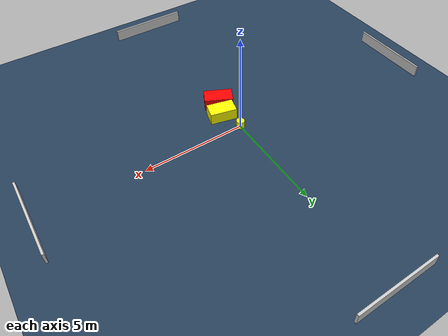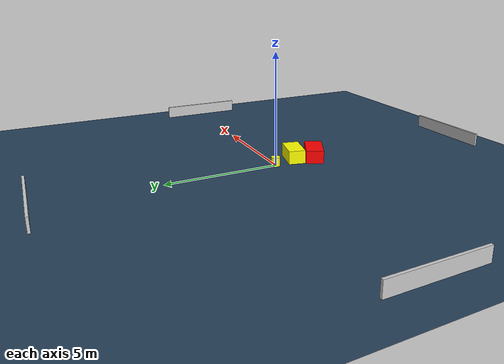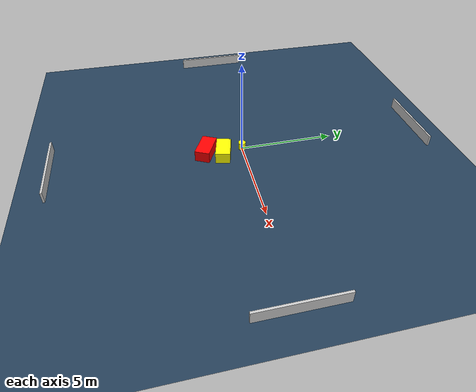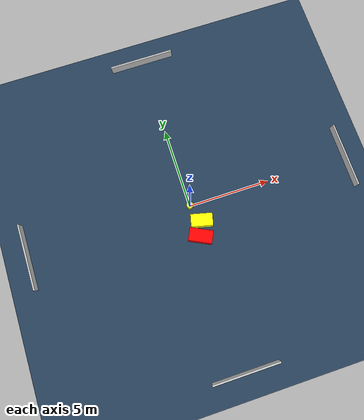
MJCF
<?xml version="1.0" ?>
<mujoco model="generated_environment">
  <option timestep="0.01" integrator="RK4" cone="elliptic"/>
  <default>
    <geom density="1"/>
  </default>
  <asset>
    <texture builtin="gradient" height="3072" name="skybox" rgb1="0.3 0.5 0.7" rgb2="0 0 0" type="skybox" width="512"/>
    <texture builtin="checker" height="300" name="groundplane" rgb1="0.2 0.3 0.4" rgb2="0.1 0.2 0.3" type="2d" width="300"/>
    <material name="groundplane" reflectance="0.2" texrepeat="5 5" texture="groundplane"/>
  </asset>
  <worldbody>
    <light dir="0 0 -1" directional="true" pos="0 0 1.5"/>
    <geom condim="3" friction="0.5 0.005 0.001" material="groundplane" name="floor" pos="0 0 0" size="0 0 0.05" type="plane"/>
    <body name="walls">
      <geom name="wall_1" condim="4" pos="-10.0 0.0 0.3" rgba="0.800000011920929 0.800000011920929 0.800000011920929 1.0" size="0.05 2.0 0.3" type="box"/>
      <geom name="wall_2" condim="4" pos="10.0 0.0 0.3" rgba="0.800000011920929 0.800000011920929 0.800000011920929 1.0" size="0.05 2.0 0.3" type="box"/>
      <geom name="wall_3" condim="4" pos="0.0 -10.0 0.3" rgba="0.800000011920929 0.800000011920929 0.800000011920929 1.0" size="2.0 0.05 0.3" type="box"/>
      <geom name="wall_4" condim="4" pos="0.0 10.0 0.3" rgba="0.800000011920929 0.800000011920929 0.800000011920929 1.0" size="2.0 0.05 0.3" type="box"/>
    </body>
    <body name="robot">
      <joint name="joint_x" type="slide" pos="0 0 0" axis="1 0 0"/>
      <joint name="joint_y" type="slide" pos="0 0 0" axis="0 1 0"/>
      <geom name="robot" type="cylinder" pos="0.0 0.0 0.2" size="0.2 0.2 0.0" mass="5.0" friction="1.0 0.005 0.0001" condim="4" rgba="1.0 1.0 0.0 1.0"/>
    </body>
    <body name="obstacle_1_movable">
      <geom name="obstacle_1_movable" condim="4" pos="0.3703496354692592 -1.100549151025955 0.3" euler="0 0 346.3110335283347" friction="0.0 0.005 0.001" rgba="1.0 1.0 0.0 1.0" size="0.6545578230958831 0.38068188931261393 0.3" type="box" mass="0.1"/>
      <joint type="free"/>
    </body>
    <body name="obstacle_2_static">
      <geom name="obstacle_2_static" condim="4" pos="0.026895727899396947 -1.9689570888487022 0.3" euler="0 0 63.6354629684775" friction="0.0 0.005 0.001" rgba="1.0 0.0 0.0 1.0" size="0.3906973956351095 0.7090476613902463 0.3" type="box"/>
    </body>
  </worldbody>
  <actuator>
    <motor name="actuator_x" joint="joint_x" gear="1" ctrlrange="-1 1"/>
    <motor name="actuator_y" joint="joint_y" gear="1" ctrlrange="-1 1"/>
  </actuator>
</mujoco>
